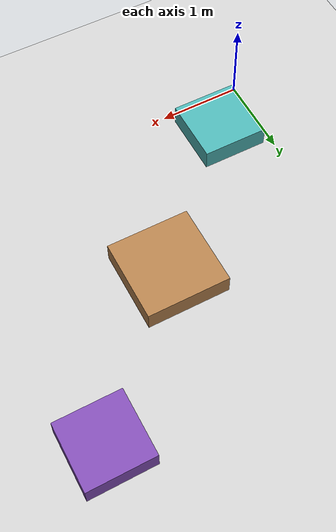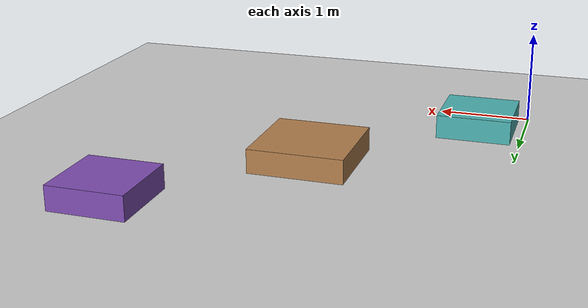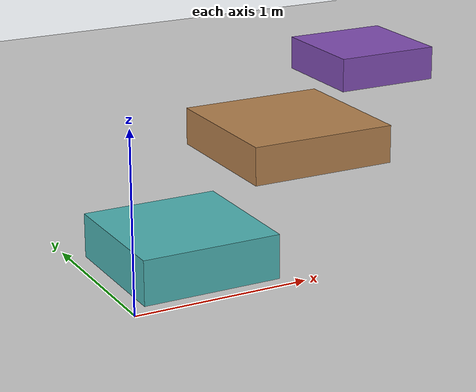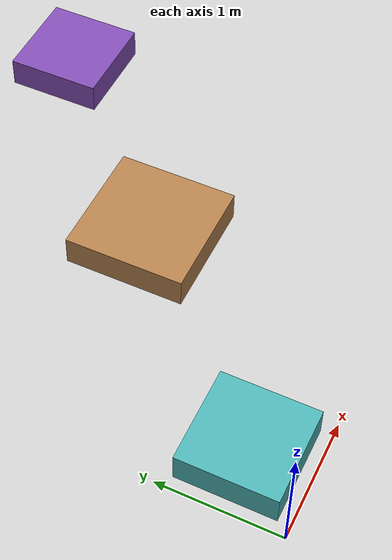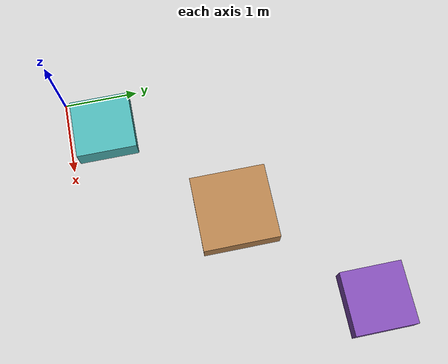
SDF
<!-- worlds/simple_environment.world -->
<?xml version="1.0" ?>
<sdf version="1.6">
  <world name="simple_environment">
    <include>
      <uri>model://sun</uri>
    </include>
    <include>
      <uri>model://ground_plane</uri>
    </include>

    <!-- Component Supply Station -->
    <model name="component_supply">
      <static>true</static>
      <pose>0.5 0.5 0.0 0 0 0</pose>
      <link name="link">
        <collision name="collision">
          <geometry>
            <box>
              <size>0.8 0.8 0.5</size>
            </box>
          </geometry>
        </collision>
        <visual name="visual">
          <geometry>
            <box>
              <size>0.8 0.8 0.5</size>
            </box>
          </geometry>
          <material>
            <ambient>0.3 0.7 0.7 1</ambient>
            <diffuse>0.3 0.7 0.7 1</diffuse>
          </material>
        </visual>
      </link>
    </model>

    <!-- Assembly Station -->
    <model name="assembly_station">
      <static>true</static>
      <pose>2.0 2.0 0.0 0 0 0</pose>
      <link name="link">
        <collision name="collision">
          <geometry>
            <box>
              <size>1.0 1.0 0.5</size>
            </box>
          </geometry>
        </collision>
        <visual name="visual">
          <geometry>
            <box>
              <size>1.0 1.0 0.5</size>
            </box>
          </geometry>
          <material>
            <ambient>0.7 0.5 0.3 1</ambient>
            <diffuse>0.7 0.5 0.3 1</diffuse>
          </material>
        </visual>
      </link>
    </model>

    <!-- Inspection Station -->
    <model name="inspection_station">
      <static>true</static>
      <pose>3.5 3.5 0.0 0 0 0</pose>
      <link name="link">
        <collision name="collision">
          <geometry>
            <box>
              <size>0.8 0.8 0.5</size>
            </box>
          </geometry>
        </collision>
        <visual name="visual">
          <geometry>
            <box>
              <size>0.8 0.8 0.5</size>
            </box>
          </geometry>
          <material>
            <ambient>0.5 0.3 0.7 1</ambient>
            <diffuse>0.5 0.3 0.7 1</diffuse>
          </material>
        </visual>
      </link>
    </model>
  </world>
</sdf>
